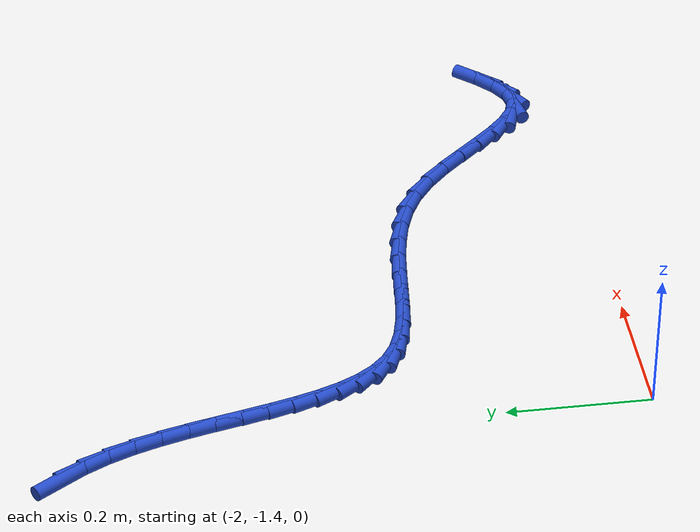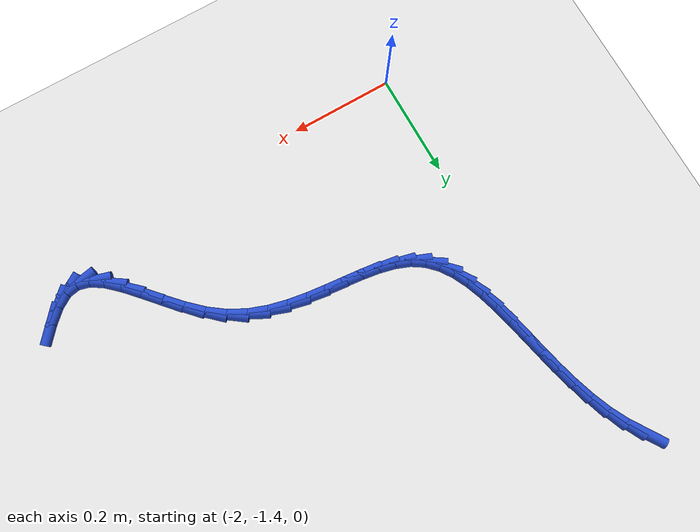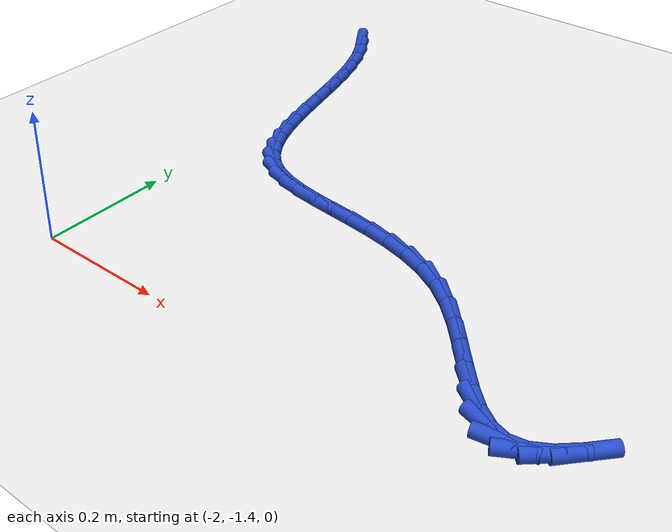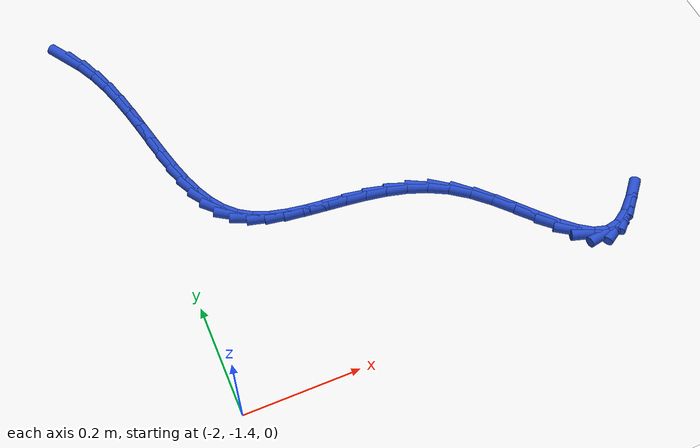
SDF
<sdf version="1.6">
 <world name="default">
  <model name="ground_plane">
   <static>1</static>
   <link name="link">
    <collision name="collision">
     <geometry><plane><normal>0 0 1</normal><size>100 100</size></plane></geometry>
     <surface><friction><ode><mu>100</mu><mu2>50</mu2></ode></friction></surface>
    </collision>
    <visual name="visual">
     <cast_shadows>0</cast_shadows>
     <geometry><plane><normal>0 0 1</normal><size>100 100</size></plane></geometry>
     <material>
      <script><uri>file://media/materials/scripts/gazebo.material</uri><name>Gazebo/WhiteGlow</name></script>
     </material>
    </visual>
   </link>
  </model>
  <model name="line">
   <link name="link_129">
    <pose>-2.0626481778782773 -0.6057520531025293 0.01 0 1.57 -0.996784761587809</pose>
    <collision name="collision">
     <geometry><cylinder><radius>0.01</radius><length>0.08</length></cylinder></geometry>
    </collision>
    <visual name="visual">
     <material>
      <script><name>Gazebo/Blue</name><uri>file://media/materials/scripts/gazebo.material</uri></script>
     </material>
     <geometry><cylinder><radius>0.01</radius><length>0.08</length></cylinder></geometry>
    </visual>
   </link>
   <link name="link_130">
    <pose>-2.0429843924712534 -0.6361610885571137 0.01 0 1.57 -1.0968131416560831</pose>
    <collision name="collision">
     <geometry><cylinder><radius>0.01</radius><length>0.08</length></cylinder></geometry>
    </collision>
    <visual name="visual">
     <material>
      <script><name>Gazebo/Blue</name><uri>file://media/materials/scripts/gazebo.material</uri></script>
     </material>
     <geometry><cylinder><radius>0.01</radius><length>0.08</length></cylinder></geometry>
    </visual>
   </link>
   <link name="link_131">
    <pose>-2.0262101301300675 -0.6688602813373722 0.01 0 1.57 -1.187334472448189</pose>
    <collision name="collision">
     <geometry><cylinder><radius>0.01</radius><length>0.08</length></cylinder></geometry>
    </collision>
    <visual name="visual">
     <material>
      <script><name>Gazebo/Blue</name><uri>file://media/materials/scripts/gazebo.material</uri></script>
     </material>
     <geometry><cylinder><radius>0.01</radius><length>0.08</length></cylinder></geometry>
    </visual>
   </link>
   <link name="link_132">
    <pose>-2.0121929208148503 -0.7036051569917864 0.01 0 1.57 -1.2558702939475381</pose>
    <collision name="collision">
     <geometry><cylinder><radius>0.01</radius><length>0.08</length></cylinder></geometry>
    </collision>
    <visual name="visual">
     <material>
      <script><name>Gazebo/Blue</name><uri>file://media/materials/scripts/gazebo.material</uri></script>
     </material>
     <geometry><cylinder><radius>0.01</radius><length>0.08</length></cylinder></geometry>
    </visual>
   </link>
   <link name="link_133">
    <pose>-2.000391986577265 -0.739830163205638 0.01 0 1.57 -1.3045144023339492</pose>
    <collision name="collision">
     <geometry><cylinder><radius>0.01</radius><length>0.08</length></cylinder></geometry>
    </collision>
    <visual name="visual">
     <material>
      <script><name>Gazebo/Blue</name><uri>file://media/materials/scripts/gazebo.material</uri></script>
     </material>
     <geometry><cylinder><radius>0.01</radius><length>0.08</length></cylinder></geometry>
    </visual>
   </link>
   <link name="link_134">
    <pose>-1.9902626527091254 -0.7769666833999604 0.01 0 1.57 -1.3350659781471734</pose>
    <collision name="collision">
     <geometry><cylinder><radius>0.01</radius><length>0.08</length></cylinder></geometry>
    </collision>
    <visual name="visual">
     <material>
      <script><name>Gazebo/Blue</name><uri>file://media/materials/scripts/gazebo.material</uri></script>
     </material>
     <geometry><cylinder><radius>0.01</radius><length>0.08</length></cylinder></geometry>
    </visual>
   </link>
   <link name="link_135">
    <pose>-1.981260244502244 -0.8144461009957875 0.01 0 1.57 -1.3485092965682668</pose>
    <collision name="collision">
     <geometry><cylinder><radius>0.01</radius><length>0.08</length></cylinder></geometry>
    </collision>
    <visual name="visual">
     <material>
      <script><name>Gazebo/Blue</name><uri>file://media/materials/scripts/gazebo.material</uri></script>
     </material>
     <geometry><cylinder><radius>0.01</radius><length>0.08</length></cylinder></geometry>
    </visual>
   </link>
   <link name="link_136">
    <pose>-1.9728400872484346 -0.8516997994141506 0.01 0 1.57 -1.344807975657155</pose>
    <collision name="collision">
     <geometry><cylinder><radius>0.01</radius><length>0.08</length></cylinder></geometry>
    </collision>
    <visual name="visual">
     <material>
      <script><name>Gazebo/Blue</name><uri>file://media/materials/scripts/gazebo.material</uri></script>
     </material>
     <geometry><cylinder><radius>0.01</radius><length>0.08</length></cylinder></geometry>
    </visual>
   </link>
   <link name="link_137">
    <pose>-1.96445750623951 -0.8881591620760836 0.01 0 1.57 -1.3227206608822129</pose>
    <collision name="collision">
     <geometry><cylinder><radius>0.01</radius><length>0.08</length></cylinder></geometry>
    </collision>
    <visual name="visual">
     <material>
      <script><name>Gazebo/Blue</name><uri>file://media/materials/scripts/gazebo.material</uri></script>
     </material>
     <geometry><cylinder><radius>0.01</radius><length>0.08</length></cylinder></geometry>
    </visual>
   </link>
   <link name="link_138">
    <pose>-1.9555678267672838 -0.9232555724026197 0.01 0 1.57 -1.2795608430332117</pose>
    <collision name="collision">
     <geometry><cylinder><radius>0.01</radius><length>0.08</length></cylinder></geometry>
    </collision>
    <visual name="visual">
     <material>
      <script><name>Gazebo/Blue</name><uri>file://media/materials/scripts/gazebo.material</uri></script>
     </material>
     <geometry><cylinder><radius>0.01</radius><length>0.08</length></cylinder></geometry>
    </visual>
   </link>
   <link name="link_139">
    <pose>-1.9456263741235689 -0.9564204138147926 0.01 0 1.57 -1.210920968721867</pose>
    <collision name="collision">
     <geometry><cylinder><radius>0.01</radius><length>0.08</length></cylinder></geometry>
    </collision>
    <visual name="visual">
     <material>
      <script><name>Gazebo/Blue</name><uri>file://media/materials/scripts/gazebo.material</uri></script>
     </material>
     <geometry><cylinder><radius>0.01</radius><length>0.08</length></cylinder></geometry>
    </visual>
   </link>
   <link name="link_140">
    <pose>-1.934088473600179 -0.987085069733634 0.01 0 1.57 -1.1106016603743536</pose>
    <collision name="collision">
     <geometry><cylinder><radius>0.01</radius><length>0.08</length></cylinder></geometry>
    </collision>
    <visual name="visual">
     <material>
      <script><name>Gazebo/Blue</name><uri>file://media/materials/scripts/gazebo.material</uri></script>
     </material>
     <geometry><cylinder><radius>0.01</radius><length>0.08</length></cylinder></geometry>
    </visual>
   </link>
   <link name="link_141">
    <pose>-1.9204094504889275 -1.014680923580178 0.01 0 1.57 -0.971536692583699</pose>
    <collision name="collision">
     <geometry><cylinder><radius>0.01</radius><length>0.08</length></cylinder></geometry>
    </collision>
    <visual name="visual">
     <material>
      <script><name>Gazebo/Blue</name><uri>file://media/materials/scripts/gazebo.material</uri></script>
     </material>
     <geometry><cylinder><radius>0.01</radius><length>0.08</length></cylinder></geometry>
    </visual>
   </link>
   <link name="link_142">
    <pose>-1.9040446300816267 -1.038639358775457 0.01 0 1.57 -0.7893909444002428</pose>
    <collision name="collision">
     <geometry><cylinder><radius>0.01</radius><length>0.08</length></cylinder></geometry>
    </collision>
    <visual name="visual">
     <material>
      <script><name>Gazebo/Blue</name><uri>file://media/materials/scripts/gazebo.material</uri></script>
     </material>
     <geometry><cylinder><radius>0.01</radius><length>0.08</length></cylinder></geometry>
    </visual>
   </link>
   <link name="link_143">
    <pose>-1.88444933767009 -1.058391758740505 0.01 0 1.57 -0.5725971972219817</pose>
    <collision name="collision">
     <geometry><cylinder><radius>0.01</radius><length>0.08</length></cylinder></geometry>
    </collision>
    <visual name="visual">
     <material>
      <script><name>Gazebo/Blue</name><uri>file://media/materials/scripts/gazebo.material</uri></script>
     </material>
     <geometry><cylinder><radius>0.01</radius><length>0.08</length></cylinder></geometry>
    </visual>
   </link>
   <link name="link_144">
    <pose>-1.8611213376572393 -1.0734298950448697 0.01 0 1.57 -0.3773913427199556</pose>
    <collision name="collision">
     <geometry><cylinder><radius>0.01</radius><length>0.08</length></cylinder></geometry>
    </collision>
    <visual name="visual">
     <material>
      <script><name>Gazebo/Blue</name><uri>file://media/materials/scripts/gazebo.material</uri></script>
     </material>
     <geometry><cylinder><radius>0.01</radius><length>0.08</length></cylinder></geometry>
    </visual>
   </link>
   <link name="link_145">
    <pose>-1.8341685428644938 -1.084113741544878 0.01 0 1.57 -0.23986468381002637</pose>
    <collision name="collision">
     <geometry><cylinder><radius>0.01</radius><length>0.08</length></cylinder></geometry>
    </collision>
    <visual name="visual">
     <material>
      <script><name>Gazebo/Blue</name><uri>file://media/materials/scripts/gazebo.material</uri></script>
     </material>
     <geometry><cylinder><radius>0.01</radius><length>0.08</length></cylinder></geometry>
    </visual>
   </link>
   <link name="link_146">
    <pose>-1.8041561579371328 -1.0914539691980263 0.01 0 1.57 -0.15336144105505675</pose>
    <collision name="collision">
     <geometry><cylinder><radius>0.01</radius><length>0.08</length></cylinder></geometry>
    </collision>
    <visual name="visual">
     <material>
      <script><name>Gazebo/Blue</name><uri>file://media/materials/scripts/gazebo.material</uri></script>
     </material>
     <geometry><cylinder><radius>0.01</radius><length>0.08</length></cylinder></geometry>
    </visual>
   </link>
   <link name="link_147">
    <pose>-1.7716604561026947 -1.0964769988484564 0.01 0 1.57 -0.10806442329517901</pose>
    <collision name="collision">
     <geometry><cylinder><radius>0.01</radius><length>0.08</length></cylinder></geometry>
    </collision>
    <visual name="visual">
     <material>
      <script><name>Gazebo/Blue</name><uri>file://media/materials/scripts/gazebo.material</uri></script>
     </material>
     <geometry><cylinder><radius>0.01</radius><length>0.08</length></cylinder></geometry>
    </visual>
   </link>
   <link name="link_148">
    <pose>-1.7372577105887146 -1.1002092513403092 0.01 0 1.57 -0.09674586352959637</pose>
    <collision name="collision">
     <geometry><cylinder><radius>0.01</radius><length>0.08</length></cylinder></geometry>
    </collision>
    <visual name="visual">
     <material>
      <script><name>Gazebo/Blue</name><uri>file://media/materials/scripts/gazebo.material</uri></script>
     </material>
     <geometry><cylinder><radius>0.01</radius><length>0.08</length></cylinder></geometry>
    </visual>
   </link>
   <link name="link_149">
    <pose>-1.7015241946227326 -1.103677147517726 0.01 0 1.57 -0.11541223099188443</pose>
    <collision name="collision">
     <geometry><cylinder><radius>0.01</radius><length>0.08</length></cylinder></geometry>
    </collision>
    <visual name="visual">
     <material>
      <script><name>Gazebo/Blue</name><uri>file://media/materials/scripts/gazebo.material</uri></script>
     </material>
     <geometry><cylinder><radius>0.01</radius><length>0.08</length></cylinder></geometry>
    </visual>
   </link>
   <link name="link_150">
    <pose>-1.6650361814322854 -1.107907108224848 0.01 0 1.57 -0.16269062177183408</pose>
    <collision name="collision">
     <geometry><cylinder><radius>0.01</radius><length>0.08</length></cylinder></geometry>
    </collision>
    <visual name="visual">
     <material>
      <script><name>Gazebo/Blue</name><uri>file://media/materials/scripts/gazebo.material</uri></script>
     </material>
     <geometry><cylinder><radius>0.01</radius><length>0.08</length></cylinder></geometry>
    </visual>
   </link>
   <link name="link_151">
    <pose>-1.62836994424491 -1.113925554305816 0.01 0 1.57 -0.23890504264304724</pose>
    <collision name="collision">
     <geometry><cylinder><radius>0.01</radius><length>0.08</length></cylinder></geometry>
    </collision>
    <visual name="visual">
     <material>
      <script><name>Gazebo/Blue</name><uri>file://media/materials/scripts/gazebo.material</uri></script>
     </material>
     <geometry><cylinder><radius>0.01</radius><length>0.08</length></cylinder></geometry>
    </visual>
   </link>
   <link name="link_152">
    <pose>-1.5921017562881437 -1.122758906604772 0.01 0 1.57 -0.34477497975383525</pose>
    <collision name="collision">
     <geometry><cylinder><radius>0.01</radius><length>0.08</length></cylinder></geometry>
    </collision>
    <visual name="visual">
     <material>
      <script><name>Gazebo/Blue</name><uri>file://media/materials/scripts/gazebo.material</uri></script>
     </material>
     <geometry><cylinder><radius>0.01</radius><length>0.08</length></cylinder></geometry>
    </visual>
   </link>
   <link name="link_153">
    <pose>-1.5568078907895242 -1.1354335859658558 0.01 0 1.57 -0.4794242726571494</pose>
    <collision name="collision">
     <geometry><cylinder><radius>0.01</radius><length>0.08</length></cylinder></geometry>
    </collision>
    <visual name="visual">
     <material>
      <script><name>Gazebo/Blue</name><uri>file://media/materials/scripts/gazebo.material</uri></script>
     </material>
     <geometry><cylinder><radius>0.01</radius><length>0.08</length></cylinder></geometry>
    </visual>
   </link>
   <link name="link_154">
    <pose>-1.5230646209765897 -1.1529760132332099 0.01 0 1.57 -0.6323979520685707</pose>
    <collision name="collision">
     <geometry><cylinder><radius>0.01</radius><length>0.08</length></cylinder></geometry>
    </collision>
    <visual name="visual">
     <material>
      <script><name>Gazebo/Blue</name><uri>file://media/materials/scripts/gazebo.material</uri></script>
     </material>
     <geometry><cylinder><radius>0.01</radius><length>0.08</length></cylinder></geometry>
    </visual>
   </link>
   <link name="link_155">
    <pose>-1.4913885627557057 -1.1761880352245173 0.01 0 1.57 -0.7513785049692063</pose>
    <collision name="collision">
     <geometry><cylinder><radius>0.01</radius><length>0.08</length></cylinder></geometry>
    </collision>
    <visual name="visual">
     <material>
      <script><name>Gazebo/Blue</name><uri>file://media/materials/scripts/gazebo.material</uri></script>
     </material>
     <geometry><cylinder><radius>0.01</radius><length>0.08</length></cylinder></geometry>
    </visual>
   </link>
   <link name="link_156">
    <pose>-1.4617629278828046 -1.2038635521141898 0.01 0 1.57 -0.8200727842985465</pose>
    <collision name="collision">
     <geometry><cylinder><radius>0.01</radius><length>0.08</length></cylinder></geometry>
    </collision>
    <visual name="visual">
     <material>
      <script><name>Gazebo/Blue</name><uri>file://media/materials/scripts/gazebo.material</uri></script>
     </material>
     <geometry><cylinder><radius>0.01</radius><length>0.08</length></cylinder></geometry>
    </visual>
   </link>
   <link name="link_157">
    <pose>-1.4338901596957938 -1.2337395394125596 0.01 0 1.57 -0.8455138488207341</pose>
    <collision name="collision">
     <geometry><cylinder><radius>0.01</radius><length>0.08</length></cylinder></geometry>
    </collision>
    <visual name="visual">
     <material>
      <script><name>Gazebo/Blue</name><uri>file://media/materials/scripts/gazebo.material</uri></script>
     </material>
     <geometry><cylinder><radius>0.01</radius><length>0.08</length></cylinder></geometry>
    </visual>
   </link>
   <link name="link_158">
    <pose>-1.4074701920818595 -1.2635435260533963 0.01 0 1.57 -0.8269524001763872</pose>
    <collision name="collision">
     <geometry><cylinder><radius>0.01</radius><length>0.08</length></cylinder></geometry>
    </collision>
    <visual name="visual">
     <material>
      <script><name>Gazebo/Blue</name><uri>file://media/materials/scripts/gazebo.material</uri></script>
     </material>
     <geometry><cylinder><radius>0.01</radius><length>0.08</length></cylinder></geometry>
    </visual>
   </link>
   <link name="link_159">
    <pose>-1.3822029589281881 -1.2910030409704687 0.01 0 1.57 -0.7521457629622246</pose>
    <collision name="collision">
     <geometry><cylinder><radius>0.01</radius><length>0.08</length></cylinder></geometry>
    </collision>
    <visual name="visual">
     <material>
      <script><name>Gazebo/Blue</name><uri>file://media/materials/scripts/gazebo.material</uri></script>
     </material>
     <geometry><cylinder><radius>0.01</radius><length>0.08</length></cylinder></geometry>
    </visual>
   </link>
   <link name="link_160">
    <pose>-1.3577883941219673 -1.3138456130975464 0.01 0 1.57 -0.5893123600925168</pose>
    <collision name="collision">
     <geometry><cylinder><radius>0.01</radius><length>0.08</length></cylinder></geometry>
    </collision>
    <visual name="visual">
     <material>
      <script><name>Gazebo/Blue</name><uri>file://media/materials/scripts/gazebo.material</uri></script>
     </material>
     <geometry><cylinder><radius>0.01</radius><length>0.08</length></cylinder></geometry>
    </visual>
   </link>
   <link name="link_161">
    <pose>-1.3339264315503843 -1.3297987713683972 0.01 0 1.57 -0.2800892191109156</pose>
    <collision name="collision">
     <geometry><cylinder><radius>0.01</radius><length>0.08</length></cylinder></geometry>
    </collision>
    <visual name="visual">
     <material>
      <script><name>Gazebo/Blue</name><uri>file://media/materials/scripts/gazebo.material</uri></script>
     </material>
     <geometry><cylinder><radius>0.01</radius><length>0.08</length></cylinder></geometry>
    </visual>
   </link>
   <link name="link_162">
    <pose>-1.3103170051006259 -1.3365900447167909 0.01 0 1.57 0.18365599714803996</pose>
    <collision name="collision">
     <geometry><cylinder><radius>0.01</radius><length>0.08</length></cylinder></geometry>
    </collision>
    <visual name="visual">
     <material>
      <script><name>Gazebo/Blue</name><uri>file://media/materials/scripts/gazebo.material</uri></script>
     </material>
     <geometry><cylinder><radius>0.01</radius><length>0.08</length></cylinder></geometry>
    </visual>
   </link>
   <link name="link_163">
    <pose>-1.286670060964047 -1.332197645694917 0.01 0 1.57 0.5551317234461256</pose>
    <collision name="collision">
     <geometry><cylinder><radius>0.01</radius><length>0.08</length></cylinder></geometry>
    </collision>
    <visual name="visual">
     <material>
      <script><name>Gazebo/Blue</name><uri>file://media/materials/scripts/gazebo.material</uri></script>
     </material>
     <geometry><cylinder><radius>0.01</radius><length>0.08</length></cylinder></geometry>
    </visual>
   </link>
   <link name="link_164">
    <pose>-1.262807315983661 -1.3173982507173487 0.01 0 1.57 0.7532074988557724</pose>
    <collision name="collision">
     <geometry><cylinder><radius>0.01</radius><length>0.08</length></cylinder></geometry>
    </collision>
    <visual name="visual">
     <material>
      <script><name>Gazebo/Blue</name><uri>file://media/materials/scripts/gazebo.material</uri></script>
     </material>
     <geometry><cylinder><radius>0.01</radius><length>0.08</length></cylinder></geometry>
    </visual>
   </link>
   <link name="link_165">
    <pose>-1.2386204612156673 -1.294720519424933 0.01 0 1.57 0.8495896343869809</pose>
    <collision name="collision">
     <geometry><cylinder><radius>0.01</radius><length>0.08</length></cylinder></geometry>
    </collision>
    <visual name="visual">
     <material>
      <script><name>Gazebo/Blue</name><uri>file://media/materials/scripts/gazebo.material</uri></script>
     </material>
     <geometry><cylinder><radius>0.01</radius><length>0.08</length></cylinder></geometry>
    </visual>
   </link>
  </model>
 </world>
</sdf>
